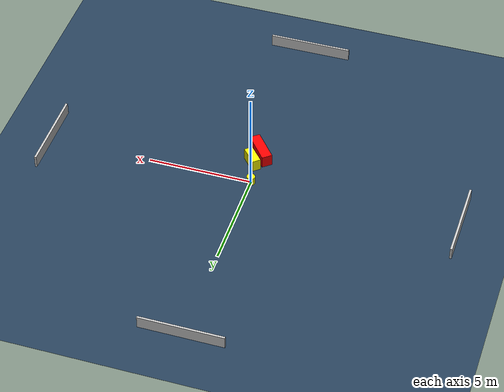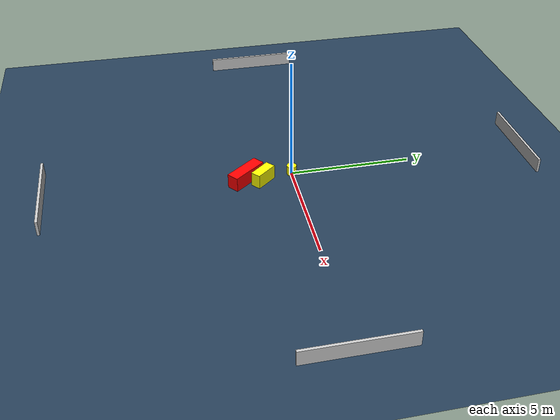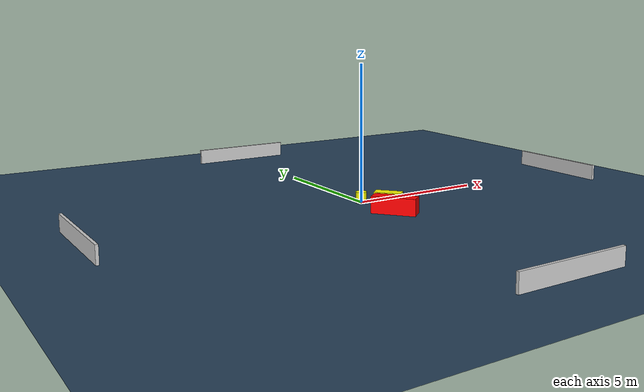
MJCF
<?xml version="1.0" ?>
<mujoco model="generated_environment">
  <option timestep="0.01" integrator="RK4" cone="elliptic"/>
  <default>
    <geom density="1"/>
  </default>
  <asset>
    <texture builtin="gradient" height="3072" name="skybox" rgb1="0.3 0.5 0.7" rgb2="0 0 0" type="skybox" width="512"/>
    <texture builtin="checker" height="300" name="groundplane" rgb1="0.2 0.3 0.4" rgb2="0.1 0.2 0.3" type="2d" width="300"/>
    <material name="groundplane" reflectance="0.2" texrepeat="5 5" texture="groundplane"/>
  </asset>
  <worldbody>
    <light dir="0 0 -1" directional="true" pos="0 0 1.5"/>
    <geom condim="3" friction="0.5 0.005 0.001" material="groundplane" name="floor" pos="0 0 0" size="0 0 0.05" type="plane"/>
    <body name="walls">
      <geom name="wall_1" condim="4" pos="-10.0 0.0 0.3" rgba="0.800000011920929 0.800000011920929 0.800000011920929 1.0" size="0.05 2.0 0.3" type="box"/>
      <geom name="wall_2" condim="4" pos="10.0 0.0 0.3" rgba="0.800000011920929 0.800000011920929 0.800000011920929 1.0" size="0.05 2.0 0.3" type="box"/>
      <geom name="wall_3" condim="4" pos="0.0 -10.0 0.3" rgba="0.800000011920929 0.800000011920929 0.800000011920929 1.0" size="2.0 0.05 0.3" type="box"/>
      <geom name="wall_4" condim="4" pos="0.0 10.0 0.3" rgba="0.800000011920929 0.800000011920929 0.800000011920929 1.0" size="2.0 0.05 0.3" type="box"/>
    </body>
    <body name="robot">
      <joint name="joint_x" type="slide" pos="0 0 0" axis="1 0 0"/>
      <joint name="joint_y" type="slide" pos="0 0 0" axis="0 1 0"/>
      <geom name="robot" type="cylinder" pos="0.0 0.0 0.2" size="0.2 0.2 0.0" mass="5.0" friction="1.0 0.005 0.0001" condim="4" rgba="1.0 1.0 0.0 1.0"/>
    </body>
    <body name="obstacle_1_movable">
      <geom name="obstacle_1_movable" condim="4" pos="0.318880083208415 -1.2492249895626308 0.3" euler="0 0 310.80971483306445" friction="0.0 0.005 0.001" rgba="1.0 1.0 0.0 1.0" size="0.4843227388006041 0.20666830962067823 0.3" type="box" mass="0.1"/>
      <joint type="free"/>
    </body>
    <body name="obstacle_2_static">
      <geom name="obstacle_2_static" condim="4" pos="0.11217910169454601 -1.9236217062420806 0.3" euler="0 0 218.95194064845847" friction="0.0 0.005 0.001" rgba="1.0 0.0 0.0 1.0" size="0.2530291192073423 0.785735724886256 0.3" type="box"/>
    </body>
  </worldbody>
  <actuator>
    <motor name="actuator_x" joint="joint_x" gear="1" ctrlrange="-1 1"/>
    <motor name="actuator_y" joint="joint_y" gear="1" ctrlrange="-1 1"/>
  </actuator>
</mujoco>
